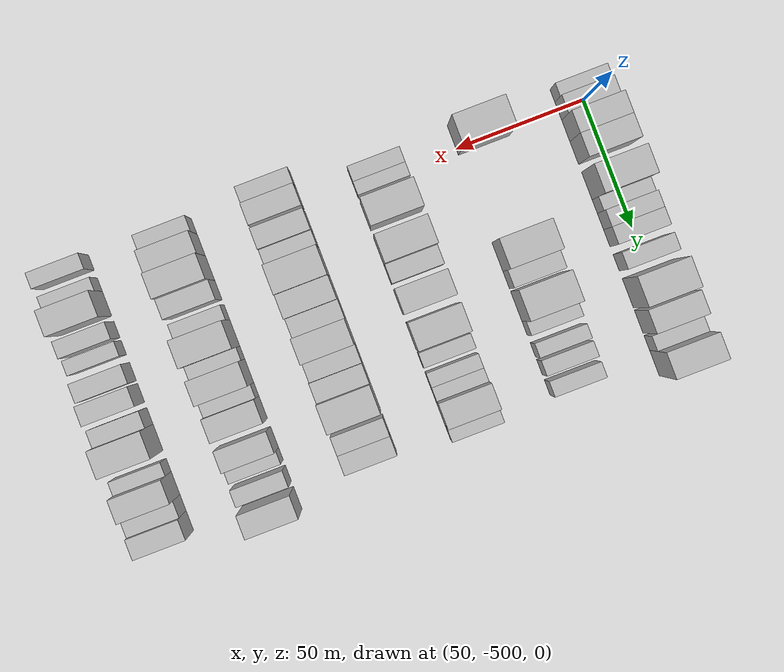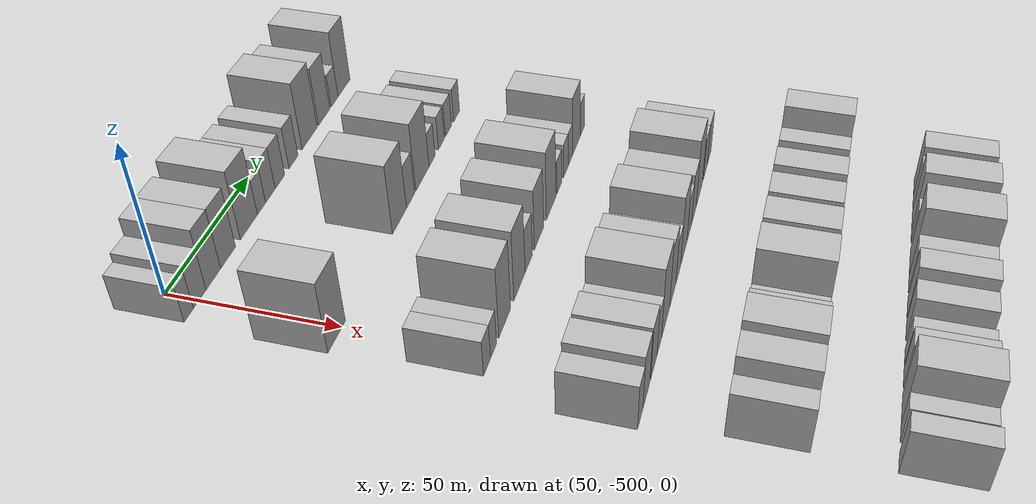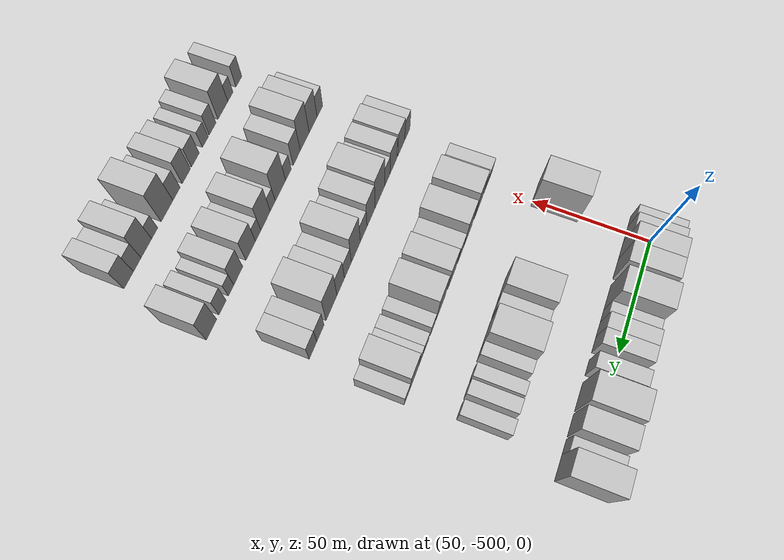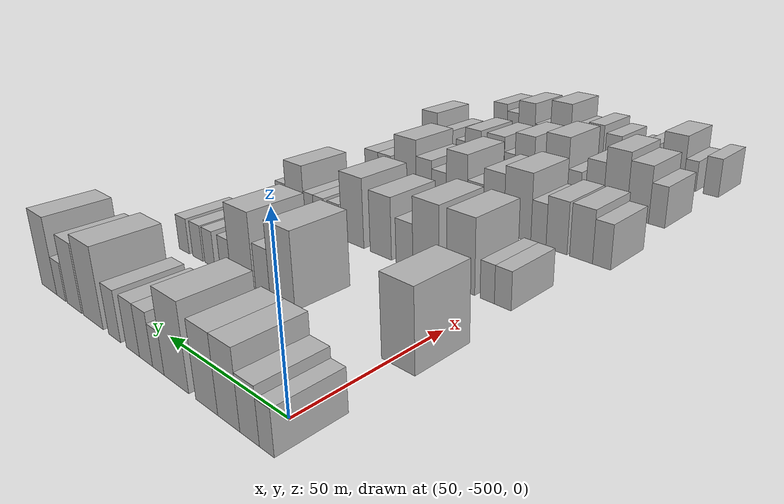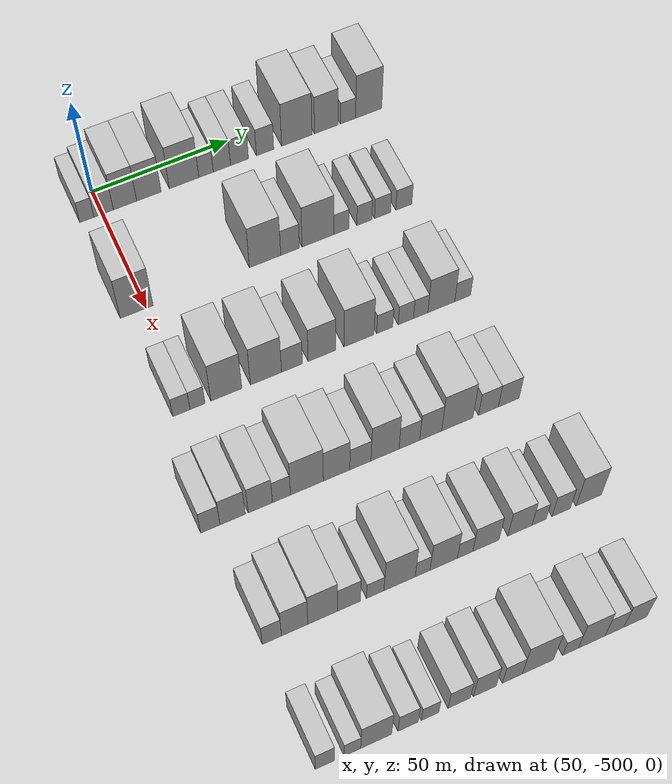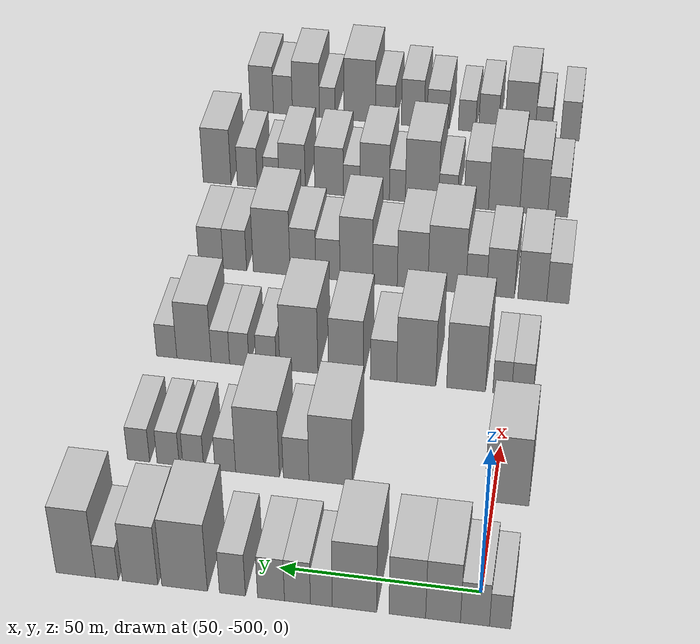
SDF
<sdf version="1.6">
 <world name="default">
  <model name="building_13">
   <static>1</static>
   <pose>50.0000 -505.5607 0 0.000000 0.000000 0.000000</pose>
   <link name="link">
    <pose>0 0 6.00 0 0 0</pose>
    <collision name="collision"><geometry><box><size>20.0000 5.0867 12.0000</size></box></geometry></collision>
    <visual name="visual">
     <cast_shadows>0</cast_shadows>
     <geometry><box><size>20.0000 5.0867 12.0000</size></box></geometry>
     <material>
      <script>
       <uri>model://HANNAS_wall/materials/scripts</uri>
       <uri>model://HANNAS_wall/materials/textures</uri>
       <name>vrc/HANNAS_wall</name>
      </script>
     </material>
    </visual>
   </link>
  </model>
  <model name="building_14">
   <static>1</static>
   <pose>50.0000 -499.5137 0 0.000000 0.000000 0.000000</pose>
   <link name="link">
    <pose>0 0 7.50 0 0 0</pose>
    <collision name="collision"><geometry><box><size>20.0000 7.0072 15.0000</size></box></geometry></collision>
    <visual name="visual">
     <cast_shadows>0</cast_shadows>
     <geometry><box><size>20.0000 7.0072 15.0000</size></box></geometry>
     <material>
      <script>
       <uri>model://HANNAS_wall/materials/scripts</uri>
       <uri>model://HANNAS_wall/materials/textures</uri>
       <name>vrc/HANNAS_wall</name>
      </script>
     </material>
    </visual>
   </link>
  </model>
  <model name="building_15">
   <static>1</static>
   <pose>50.0000 -491.7974 0 0.000000 0.000000 0.000000</pose>
   <link name="link">
    <pose>0 0 10.50 0 0 0</pose>
    <collision name="collision"><geometry><box><size>20.0000 8.4254 21.0000</size></box></geometry></collision>
    <visual name="visual">
     <cast_shadows>0</cast_shadows>
     <geometry><box><size>20.0000 8.4254 21.0000</size></box></geometry>
     <material>
      <script>
       <uri>model://HANNAS_wall/materials/scripts</uri>
       <uri>model://HANNAS_wall/materials/textures</uri>
       <name>vrc/HANNAS_wall</name>
      </script>
     </material>
    </visual>
   </link>
  </model>
  <model name="building_16">
   <static>1</static>
   <pose>50.0000 -483.1295 0 0.000000 0.000000 0.000000</pose>
   <link name="link">
    <pose>0 0 10.50 0 0 0</pose>
    <collision name="collision"><geometry><box><size>20.0000 8.9103 21.0000</size></box></geometry></collision>
    <visual name="visual">
     <cast_shadows>0</cast_shadows>
     <geometry><box><size>20.0000 8.9103 21.0000</size></box></geometry>
     <material>
      <script>
       <uri>model://HANNAS_wall/materials/scripts</uri>
       <uri>model://HANNAS_wall/materials/textures</uri>
       <name>vrc/HANNAS_wall</name>
      </script>
     </material>
    </visual>
   </link>
  </model>
  <model name="building_17">
   <static>1</static>
   <pose>50.0000 -470.2435 0 0.000000 0.000000 0.000000</pose>
   <link name="link">
    <pose>0 0 12.00 0 0 0</pose>
    <collision name="collision"><geometry><box><size>20.0000 10.8619 24.0000</size></box></geometry></collision>
    <visual name="visual">
     <cast_shadows>0</cast_shadows>
     <geometry><box><size>20.0000 10.8619 24.0000</size></box></geometry>
     <material>
      <script>
       <uri>model://HANNAS_wall/materials/scripts</uri>
       <uri>model://HANNAS_wall/materials/textures</uri>
       <name>vrc/HANNAS_wall</name>
      </script>
     </material>
    </visual>
   </link>
  </model>
  <model name="building_18">
   <static>1</static>
   <pose>50.0000 -462.1302 0 0.000000 0.000000 0.000000</pose>
   <link name="link">
    <pose>0 0 6.00 0 0 0</pose>
    <collision name="collision"><geometry><box><size>20.0000 5.3646 12.0000</size></box></geometry></collision>
    <visual name="visual">
     <cast_shadows>0</cast_shadows>
     <geometry><box><size>20.0000 5.3646 12.0000</size></box></geometry>
     <material>
      <script>
       <uri>model://HANNAS_wall/materials/scripts</uri>
       <uri>model://HANNAS_wall/materials/textures</uri>
       <name>vrc/HANNAS_wall</name>
      </script>
     </material>
    </visual>
   </link>
  </model>
  <model name="building_19">
   <static>1</static>
   <pose>50.0000 -456.2409 0 0.000000 0.000000 0.000000</pose>
   <link name="link">
    <pose>0 0 7.50 0 0 0</pose>
    <collision name="collision"><geometry><box><size>20.0000 6.4140 15.0000</size></box></geometry></collision>
    <visual name="visual">
     <cast_shadows>0</cast_shadows>
     <geometry><box><size>20.0000 6.4140 15.0000</size></box></geometry>
     <material>
      <script>
       <uri>model://HANNAS_wall/materials/scripts</uri>
       <uri>model://HANNAS_wall/materials/textures</uri>
       <name>vrc/HANNAS_wall</name>
      </script>
     </material>
    </visual>
   </link>
  </model>
  <model name="building_20">
   <static>1</static>
   <pose>50.0000 -449.6966 0 0.000000 0.000000 0.000000</pose>
   <link name="link">
    <pose>0 0 7.50 0 0 0</pose>
    <collision name="collision"><geometry><box><size>20.0000 6.6747 15.0000</size></box></geometry></collision>
    <visual name="visual">
     <cast_shadows>0</cast_shadows>
     <geometry><box><size>20.0000 6.6747 15.0000</size></box></geometry>
     <material>
      <script>
       <uri>model://HANNAS_wall/materials/scripts</uri>
       <uri>model://HANNAS_wall/materials/textures</uri>
       <name>vrc/HANNAS_wall</name>
      </script>
     </material>
    </visual>
   </link>
  </model>
  <model name="building_21">
   <static>1</static>
   <pose>50.0000 -440.1250 0 0.000000 0.000000 0.000000</pose>
   <link name="link">
    <pose>0 0 7.50 0 0 0</pose>
    <collision name="collision"><geometry><box><size>20.0000 6.4684 15.0000</size></box></geometry></collision>
    <visual name="visual">
     <cast_shadows>0</cast_shadows>
     <geometry><box><size>20.0000 6.4684 15.0000</size></box></geometry>
     <material>
      <script>
       <uri>model://HANNAS_wall/materials/scripts</uri>
       <uri>model://HANNAS_wall/materials/textures</uri>
       <name>vrc/HANNAS_wall</name>
      </script>
     </material>
    </visual>
   </link>
  </model>
  <model name="building_22">
   <static>1</static>
   <pose>50.0000 -428.1693 0 0.000000 0.000000 0.000000</pose>
   <link name="link">
    <pose>0 0 12.00 0 0 0</pose>
    <collision name="collision"><geometry><box><size>20.0000 11.4430 24.0000</size></box></geometry></collision>
    <visual name="visual">
     <cast_shadows>0</cast_shadows>
     <geometry><box><size>20.0000 11.4430 24.0000</size></box></geometry>
     <material>
      <script>
       <uri>model://HANNAS_wall/materials/scripts</uri>
       <uri>model://HANNAS_wall/materials/textures</uri>
       <name>vrc/HANNAS_wall</name>
      </script>
     </material>
    </visual>
   </link>
  </model>
  <model name="building_23">
   <static>1</static>
   <pose>50.0000 -416.9795 0 0.000000 0.000000 0.000000</pose>
   <link name="link">
    <pose>0 0 10.50 0 0 0</pose>
    <collision name="collision"><geometry><box><size>20.0000 8.9366 21.0000</size></box></geometry></collision>
    <visual name="visual">
     <cast_shadows>0</cast_shadows>
     <geometry><box><size>20.0000 8.9366 21.0000</size></box></geometry>
     <material>
      <script>
       <uri>model://HANNAS_wall/materials/scripts</uri>
       <uri>model://HANNAS_wall/materials/textures</uri>
       <name>vrc/HANNAS_wall</name>
      </script>
     </material>
    </visual>
   </link>
  </model>
  <model name="building_24">
   <static>1</static>
   <pose>50.0000 -408.6241 0 0.000000 0.000000 0.000000</pose>
   <link name="link">
    <pose>0 0 6.00 0 0 0</pose>
    <collision name="collision"><geometry><box><size>20.0000 5.7742 12.0000</size></box></geometry></collision>
    <visual name="visual">
     <cast_shadows>0</cast_shadows>
     <geometry><box><size>20.0000 5.7742 12.0000</size></box></geometry>
     <material>
      <script>
       <uri>model://HANNAS_wall/materials/scripts</uri>
       <uri>model://HANNAS_wall/materials/textures</uri>
       <name>vrc/HANNAS_wall</name>
      </script>
     </material>
    </visual>
   </link>
  </model>
  <model name="building_25">
   <static>1</static>
   <pose>50.0000 -400.7155 0 0.000000 0.000000 0.000000</pose>
   <link name="link">
    <pose>0 0 12.00 0 0 0</pose>
    <collision name="collision"><geometry><box><size>20.0000 10.0430 24.0000</size></box></geometry></collision>
    <visual name="visual">
     <cast_shadows>0</cast_shadows>
     <geometry><box><size>20.0000 10.0430 24.0000</size></box></geometry>
     <material>
      <script>
       <uri>model://HANNAS_wall/materials/scripts</uri>
       <uri>model://HANNAS_wall/materials/textures</uri>
       <name>vrc/HANNAS_wall</name>
      </script>
     </material>
    </visual>
   </link>
  </model>
  <model name="building_154">
   <static>1</static>
   <pose>90.0000 -503.3720 0 0.000000 0.000000 0.000000</pose>
   <link name="link">
    <pose>0 0 12.00 0 0 0</pose>
    <collision name="collision"><geometry><box><size>20.0000 11.5220 24.0000</size></box></geometry></collision>
    <visual name="visual">
     <cast_shadows>0</cast_shadows>
     <geometry><box><size>20.0000 11.5220 24.0000</size></box></geometry>
     <material>
      <script>
       <uri>model://HANNAS_wall/materials/scripts</uri>
       <uri>model://HANNAS_wall/materials/textures</uri>
       <name>vrc/HANNAS_wall</name>
      </script>
     </material>
    </visual>
   </link>
  </model>
  <model name="building_155">
   <static>1</static>
   <pose>90.0000 -457.6082 0 0.000000 0.000000 0.000000</pose>
   <link name="link">
    <pose>0 0 12.00 0 0 0</pose>
    <collision name="collision"><geometry><box><size>20.0000 11.3352 24.0000</size></box></geometry></collision>
    <visual name="visual">
     <cast_shadows>0</cast_shadows>
     <geometry><box><size>20.0000 11.3352 24.0000</size></box></geometry>
     <material>
      <script>
       <uri>model://HANNAS_wall/materials/scripts</uri>
       <uri>model://HANNAS_wall/materials/textures</uri>
       <name>vrc/HANNAS_wall</name>
      </script>
     </material>
    </visual>
   </link>
  </model>
  <model name="building_156">
   <static>1</static>
   <pose>90.0000 -448.5424 0 0.000000 0.000000 0.000000</pose>
   <link name="link">
    <pose>0 0 7.50 0 0 0</pose>
    <collision name="collision"><geometry><box><size>20.0000 6.7965 15.0000</size></box></geometry></collision>
    <visual name="visual">
     <cast_shadows>0</cast_shadows>
     <geometry><box><size>20.0000 6.7965 15.0000</size></box></geometry>
     <material>
      <script>
       <uri>model://HANNAS_wall/materials/scripts</uri>
       <uri>model://HANNAS_wall/materials/textures</uri>
       <name>vrc/HANNAS_wall</name>
      </script>
     </material>
    </visual>
   </link>
  </model>
  <model name="building_157">
   <static>1</static>
   <pose>90.0000 -438.3200 0 0.000000 0.000000 0.000000</pose>
   <link name="link">
    <pose>0 0 12.00 0 0 0</pose>
    <collision name="collision"><geometry><box><size>20.0000 11.6481 24.0000</size></box></geometry></collision>
    <visual name="visual">
     <cast_shadows>0</cast_shadows>
     <geometry><box><size>20.0000 11.6481 24.0000</size></box></geometry>
     <material>
      <script>
       <uri>model://HANNAS_wall/materials/scripts</uri>
       <uri>model://HANNAS_wall/materials/textures</uri>
       <name>vrc/HANNAS_wall</name>
      </script>
     </material>
    </visual>
   </link>
  </model>
  <model name="building_158">
   <static>1</static>
   <pose>90.0000 -429.7344 0 0.000000 0.000000 0.000000</pose>
   <link name="link">
    <pose>0 0 6.00 0 0 0</pose>
    <collision name="collision"><geometry><box><size>20.0000 5.5231 12.0000</size></box></geometry></collision>
    <visual name="visual">
     <cast_shadows>0</cast_shadows>
     <geometry><box><size>20.0000 5.5231 12.0000</size></box></geometry>
     <material>
      <script>
       <uri>model://HANNAS_wall/materials/scripts</uri>
       <uri>model://HANNAS_wall/materials/textures</uri>
       <name>vrc/HANNAS_wall</name>
      </script>
     </material>
    </visual>
   </link>
  </model>
  <model name="building_159">
   <static>1</static>
   <pose>90.0000 -421.1964 0 0.000000 0.000000 0.000000</pose>
   <link name="link">
    <pose>0 0 6.00 0 0 0</pose>
    <collision name="collision"><geometry><box><size>20.0000 5.5530 12.0000</size></box></geometry></collision>
    <visual name="visual">
     <cast_shadows>0</cast_shadows>
     <geometry><box><size>20.0000 5.5530 12.0000</size></box></geometry>
     <material>
      <script>
       <uri>model://HANNAS_wall/materials/scripts</uri>
       <uri>model://HANNAS_wall/materials/textures</uri>
       <name>vrc/HANNAS_wall</name>
      </script>
     </material>
    </visual>
   </link>
  </model>
  <model name="building_160">
   <static>1</static>
   <pose>90.0000 -414.4404 0 0.000000 0.000000 0.000000</pose>
   <link name="link">
    <pose>0 0 6.00 0 0 0</pose>
    <collision name="collision"><geometry><box><size>20.0000 5.9591 12.0000</size></box></geometry></collision>
    <visual name="visual">
     <cast_shadows>0</cast_shadows>
     <geometry><box><size>20.0000 5.9591 12.0000</size></box></geometry>
     <material>
      <script>
       <uri>model://HANNAS_wall/materials/scripts</uri>
       <uri>model://HANNAS_wall/materials/textures</uri>
       <name>vrc/HANNAS_wall</name>
      </script>
     </material>
    </visual>
   </link>
  </model>
  <model name="building_161">
   <static>1</static>
   <pose>90.0000 -406.4731 0 0.000000 0.000000 0.000000</pose>
   <link name="link">
    <pose>0 0 6.00 0 0 0</pose>
    <collision name="collision"><geometry><box><size>20.0000 5.9755 12.0000</size></box></geometry></collision>
    <visual name="visual">
     <cast_shadows>0</cast_shadows>
     <geometry><box><size>20.0000 5.9755 12.0000</size></box></geometry>
     <material>
      <script>
       <uri>model://HANNAS_wall/materials/scripts</uri>
       <uri>model://HANNAS_wall/materials/textures</uri>
       <name>vrc/HANNAS_wall</name>
      </script>
     </material>
    </visual>
   </link>
  </model>
  <model name="building_288">
   <static>1</static>
   <pose>130.0000 -503.9950 0 0.000000 0.000000 0.000000</pose>
   <link name="link">
    <pose>0 0 6.00 0 0 0</pose>
    <collision name="collision"><geometry><box><size>20.0000 5.8829 12.0000</size></box></geometry></collision>
    <visual name="visual">
     <cast_shadows>0</cast_shadows>
     <geometry><box><size>20.0000 5.8829 12.0000</size></box></geometry>
     <material>
      <script>
       <uri>model://HANNAS_wall/materials/scripts</uri>
       <uri>model://HANNAS_wall/materials/textures</uri>
       <name>vrc/HANNAS_wall</name>
      </script>
     </material>
    </visual>
   </link>
  </model>
  <model name="building_289">
   <static>1</static>
   <pose>130.0000 -498.4662 0 0.000000 0.000000 0.000000</pose>
   <link name="link">
    <pose>0 0 6.00 0 0 0</pose>
    <collision name="collision"><geometry><box><size>20.0000 5.1748 12.0000</size></box></geometry></collision>
    <visual name="visual">
     <cast_shadows>0</cast_shadows>
     <geometry><box><size>20.0000 5.1748 12.0000</size></box></geometry>
     <material>
      <script>
       <uri>model://HANNAS_wall/materials/scripts</uri>
       <uri>model://HANNAS_wall/materials/textures</uri>
       <name>vrc/HANNAS_wall</name>
      </script>
     </material>
    </visual>
   </link>
  </model>
  <model name="building_290">
   <static>1</static>
   <pose>130.0000 -488.5231 0 0.000000 0.000000 0.000000</pose>
   <link name="link">
    <pose>0 0 12.00 0 0 0</pose>
    <collision name="collision"><geometry><box><size>20.0000 10.7113 24.0000</size></box></geometry></collision>
    <visual name="visual">
     <cast_shadows>0</cast_shadows>
     <geometry><box><size>20.0000 10.7113 24.0000</size></box></geometry>
     <material>
      <script>
       <uri>model://HANNAS_wall/materials/scripts</uri>
       <uri>model://HANNAS_wall/materials/textures</uri>
       <name>vrc/HANNAS_wall</name>
      </script>
     </material>
    </visual>
   </link>
  </model>
  <model name="building_291">
   <static>1</static>
   <pose>130.0000 -474.7561 0 0.000000 0.000000 0.000000</pose>
   <link name="link">
    <pose>0 0 12.00 0 0 0</pose>
    <collision name="collision"><geometry><box><size>20.0000 10.8227 24.0000</size></box></geometry></collision>
    <visual name="visual">
     <cast_shadows>0</cast_shadows>
     <geometry><box><size>20.0000 10.8227 24.0000</size></box></geometry>
     <material>
      <script>
       <uri>model://HANNAS_wall/materials/scripts</uri>
       <uri>model://HANNAS_wall/materials/textures</uri>
       <name>vrc/HANNAS_wall</name>
      </script>
     </material>
    </visual>
   </link>
  </model>
  <model name="building_292">
   <static>1</static>
   <pose>130.0000 -465.6799 0 0.000000 0.000000 0.000000</pose>
   <link name="link">
    <pose>0 0 7.50 0 0 0</pose>
    <collision name="collision"><geometry><box><size>20.0000 7.3295 15.0000</size></box></geometry></collision>
    <visual name="visual">
     <cast_shadows>0</cast_shadows>
     <geometry><box><size>20.0000 7.3295 15.0000</size></box></geometry>
     <material>
      <script>
       <uri>model://HANNAS_wall/materials/scripts</uri>
       <uri>model://HANNAS_wall/materials/textures</uri>
       <name>vrc/HANNAS_wall</name>
      </script>
     </material>
    </visual>
   </link>
  </model>
  <model name="building_293">
   <static>1</static>
   <pose>130.0000 -455.1650 0 0.000000 0.000000 0.000000</pose>
   <link name="link">
    <pose>0 0 10.50 0 0 0</pose>
    <collision name="collision"><geometry><box><size>20.0000 9.7003 21.0000</size></box></geometry></collision>
    <visual name="visual">
     <cast_shadows>0</cast_shadows>
     <geometry><box><size>20.0000 9.7003 21.0000</size></box></geometry>
     <material>
      <script>
       <uri>model://HANNAS_wall/materials/scripts</uri>
       <uri>model://HANNAS_wall/materials/textures</uri>
       <name>vrc/HANNAS_wall</name>
      </script>
     </material>
    </visual>
   </link>
  </model>
  <model name="building_294">
   <static>1</static>
   <pose>130.0000 -441.9603 0 0.000000 0.000000 0.000000</pose>
   <link name="link">
    <pose>0 0 12.00 0 0 0</pose>
    <collision name="collision"><geometry><box><size>20.0000 10.7091 24.0000</size></box></geometry></collision>
    <visual name="visual">
     <cast_shadows>0</cast_shadows>
     <geometry><box><size>20.0000 10.7091 24.0000</size></box></geometry>
     <material>
      <script>
       <uri>model://HANNAS_wall/materials/scripts</uri>
       <uri>model://HANNAS_wall/materials/textures</uri>
       <name>vrc/HANNAS_wall</name>
      </script>
     </material>
    </visual>
   </link>
  </model>
  <model name="building_295">
   <static>1</static>
   <pose>130.0000 -432.7338 0 0.000000 0.000000 0.000000</pose>
   <link name="link">
    <pose>0 0 6.00 0 0 0</pose>
    <collision name="collision"><geometry><box><size>20.0000 5.7440 12.0000</size></box></geometry></collision>
    <visual name="visual">
     <cast_shadows>0</cast_shadows>
     <geometry><box><size>20.0000 5.7440 12.0000</size></box></geometry>
     <material>
      <script>
       <uri>model://HANNAS_wall/materials/scripts</uri>
       <uri>model://HANNAS_wall/materials/textures</uri>
       <name>vrc/HANNAS_wall</name>
      </script>
     </material>
    </visual>
   </link>
  </model>
  <model name="building_296">
   <static>1</static>
   <pose>130.0000 -425.1068 0 0.000000 0.000000 0.000000</pose>
   <link name="link">
    <pose>0 0 6.00 0 0 0</pose>
    <collision name="collision"><geometry><box><size>20.0000 5.5101 12.0000</size></box></geometry></collision>
    <visual name="visual">
     <cast_shadows>0</cast_shadows>
     <geometry><box><size>20.0000 5.5101 12.0000</size></box></geometry>
     <material>
      <script>
       <uri>model://HANNAS_wall/materials/scripts</uri>
       <uri>model://HANNAS_wall/materials/textures</uri>
       <name>vrc/HANNAS_wall</name>
      </script>
     </material>
    </visual>
   </link>
  </model>
  <model name="building_297">
   <static>1</static>
   <pose>130.0000 -419.7398 0 0.000000 0.000000 0.000000</pose>
   <link name="link">
    <pose>0 0 6.00 0 0 0</pose>
    <collision name="collision"><geometry><box><size>20.0000 5.2239 12.0000</size></box></geometry></collision>
    <visual name="visual">
     <cast_shadows>0</cast_shadows>
     <geometry><box><size>20.0000 5.2239 12.0000</size></box></geometry>
     <material>
      <script>
       <uri>model://HANNAS_wall/materials/scripts</uri>
       <uri>model://HANNAS_wall/materials/textures</uri>
       <name>vrc/HANNAS_wall</name>
      </script>
     </material>
    </visual>
   </link>
  </model>
  <model name="building_298">
   <static>1</static>
   <pose>130.0000 -412.2203 0 0.000000 0.000000 0.000000</pose>
   <link name="link">
    <pose>0 0 10.50 0 0 0</pose>
    <collision name="collision"><geometry><box><size>20.0000 9.8151 21.0000</size></box></geometry></collision>
    <visual name="visual">
     <cast_shadows>0</cast_shadows>
     <geometry><box><size>20.0000 9.8151 21.0000</size></box></geometry>
     <material>
      <script>
       <uri>model://HANNAS_wall/materials/scripts</uri>
       <uri>model://HANNAS_wall/materials/textures</uri>
       <name>vrc/HANNAS_wall</name>
      </script>
     </material>
    </visual>
   </link>
  </model>
  <model name="building_299">
   <static>1</static>
   <pose>130.0000 -404.4144 0 0.000000 0.000000 0.000000</pose>
   <link name="link">
    <pose>0 0 6.00 0 0 0</pose>
    <collision name="collision"><geometry><box><size>20.0000 5.7967 12.0000</size></box></geometry></collision>
    <visual name="visual">
     <cast_shadows>0</cast_shadows>
     <geometry><box><size>20.0000 5.7967 12.0000</size></box></geometry>
     <material>
      <script>
       <uri>model://HANNAS_wall/materials/scripts</uri>
       <uri>model://HANNAS_wall/materials/textures</uri>
       <name>vrc/HANNAS_wall</name>
      </script>
     </material>
    </visual>
   </link>
  </model>
  <model name="building_427">
   <static>1</static>
   <pose>170.0000 -510.8133 0 0.000000 0.000000 0.000000</pose>
   <link name="link">
    <pose>0 0 7.50 0 0 0</pose>
    <collision name="collision"><geometry><box><size>20.0000 6.3993 15.0000</size></box></geometry></collision>
    <visual name="visual">
     <cast_shadows>0</cast_shadows>
     <geometry><box><size>20.0000 6.3993 15.0000</size></box></geometry>
     <material>
      <script>
       <uri>model://HANNAS_wall/materials/scripts</uri>
       <uri>model://HANNAS_wall/materials/textures</uri>
       <name>vrc/HANNAS_wall</name>
      </script>
     </material>
    </visual>
   </link>
  </model>
  <model name="building_428">
   <static>1</static>
   <pose>170.0000 -503.4101 0 0.000000 0.000000 0.000000</pose>
   <link name="link">
    <pose>0 0 9.00 0 0 0</pose>
    <collision name="collision"><geometry><box><size>20.0000 8.4070 18.0000</size></box></geometry></collision>
    <visual name="visual">
     <cast_shadows>0</cast_shadows>
     <geometry><box><size>20.0000 8.4070 18.0000</size></box></geometry>
     <material>
      <script>
       <uri>model://HANNAS_wall/materials/scripts</uri>
       <uri>model://HANNAS_wall/materials/textures</uri>
       <name>vrc/HANNAS_wall</name>
      </script>
     </material>
    </visual>
   </link>
  </model>
  <model name="building_429">
   <static>1</static>
   <pose>170.0000 -494.1656 0 0.000000 0.000000 0.000000</pose>
   <link name="link">
    <pose>0 0 9.00 0 0 0</pose>
    <collision name="collision"><geometry><box><size>20.0000 8.0819 18.0000</size></box></geometry></collision>
    <visual name="visual">
     <cast_shadows>0</cast_shadows>
     <geometry><box><size>20.0000 8.0819 18.0000</size></box></geometry>
     <material>
      <script>
       <uri>model://HANNAS_wall/materials/scripts</uri>
       <uri>model://HANNAS_wall/materials/textures</uri>
       <name>vrc/HANNAS_wall</name>
      </script>
     </material>
    </visual>
   </link>
  </model>
  <model name="building_430">
   <static>1</static>
   <pose>170.0000 -487.0966 0 0.000000 0.000000 0.000000</pose>
   <link name="link">
    <pose>0 0 7.50 0 0 0</pose>
    <collision name="collision"><geometry><box><size>20.0000 6.0560 15.0000</size></box></geometry></collision>
    <visual name="visual">
     <cast_shadows>0</cast_shadows>
     <geometry><box><size>20.0000 6.0560 15.0000</size></box></geometry>
     <material>
      <script>
       <uri>model://HANNAS_wall/materials/scripts</uri>
       <uri>model://HANNAS_wall/materials/textures</uri>
       <name>vrc/HANNAS_wall</name>
      </script>
     </material>
    </visual>
   </link>
  </model>
  <model name="building_431">
   <static>1</static>
   <pose>170.0000 -478.4938 0 0.000000 0.000000 0.000000</pose>
   <link name="link">
    <pose>0 0 12.00 0 0 0</pose>
    <collision name="collision"><geometry><box><size>20.0000 11.1496 24.0000</size></box></geometry></collision>
    <visual name="visual">
     <cast_shadows>0</cast_shadows>
     <geometry><box><size>20.0000 11.1496 24.0000</size></box></geometry>
     <material>
      <script>
       <uri>model://HANNAS_wall/materials/scripts</uri>
       <uri>model://HANNAS_wall/materials/textures</uri>
       <name>vrc/HANNAS_wall</name>
      </script>
     </material>
    </visual>
   </link>
  </model>
  <model name="building_432">
   <static>1</static>
   <pose>170.0000 -468.4057 0 0.000000 0.000000 0.000000</pose>
   <link name="link">
    <pose>0 0 10.50 0 0 0</pose>
    <collision name="collision"><geometry><box><size>20.0000 9.0266 21.0000</size></box></geometry></collision>
    <visual name="visual">
     <cast_shadows>0</cast_shadows>
     <geometry><box><size>20.0000 9.0266 21.0000</size></box></geometry>
     <material>
      <script>
       <uri>model://HANNAS_wall/materials/scripts</uri>
       <uri>model://HANNAS_wall/materials/textures</uri>
       <name>vrc/HANNAS_wall</name>
      </script>
     </material>
    </visual>
   </link>
  </model>
  <model name="building_433">
   <static>1</static>
   <pose>170.0000 -460.2583 0 0.000000 0.000000 0.000000</pose>
   <link name="link">
    <pose>0 0 7.50 0 0 0</pose>
    <collision name="collision"><geometry><box><size>20.0000 7.2682 15.0000</size></box></geometry></collision>
    <visual name="visual">
     <cast_shadows>0</cast_shadows>
     <geometry><box><size>20.0000 7.2682 15.0000</size></box></geometry>
     <material>
      <script>
       <uri>model://HANNAS_wall/materials/scripts</uri>
       <uri>model://HANNAS_wall/materials/textures</uri>
       <name>vrc/HANNAS_wall</name>
      </script>
     </material>
    </visual>
   </link>
  </model>
  <model name="building_434">
   <static>1</static>
   <pose>170.0000 -451.7619 0 0.000000 0.000000 0.000000</pose>
   <link name="link">
    <pose>0 0 12.00 0 0 0</pose>
    <collision name="collision"><geometry><box><size>20.0000 9.7244 24.0000</size></box></geometry></collision>
    <visual name="visual">
     <cast_shadows>0</cast_shadows>
     <geometry><box><size>20.0000 9.7244 24.0000</size></box></geometry>
     <material>
      <script>
       <uri>model://HANNAS_wall/materials/scripts</uri>
       <uri>model://HANNAS_wall/materials/textures</uri>
       <name>vrc/HANNAS_wall</name>
      </script>
     </material>
    </visual>
   </link>
  </model>
  <model name="building_435">
   <static>1</static>
   <pose>170.0000 -443.3039 0 0.000000 0.000000 0.000000</pose>
   <link name="link">
    <pose>0 0 7.50 0 0 0</pose>
    <collision name="collision"><geometry><box><size>20.0000 7.1917 15.0000</size></box></geometry></collision>
    <visual name="visual">
     <cast_shadows>0</cast_shadows>
     <geometry><box><size>20.0000 7.1917 15.0000</size></box></geometry>
     <material>
      <script>
       <uri>model://HANNAS_wall/materials/scripts</uri>
       <uri>model://HANNAS_wall/materials/textures</uri>
       <name>vrc/HANNAS_wall</name>
      </script>
     </material>
    </visual>
   </link>
  </model>
  <model name="building_436">
   <static>1</static>
   <pose>170.0000 -435.8646 0 0.000000 0.000000 0.000000</pose>
   <link name="link">
    <pose>0 0 9.00 0 0 0</pose>
    <collision name="collision"><geometry><box><size>20.0000 7.6870 18.0000</size></box></geometry></collision>
    <visual name="visual">
     <cast_shadows>0</cast_shadows>
     <geometry><box><size>20.0000 7.6870 18.0000</size></box></geometry>
     <material>
      <script>
       <uri>model://HANNAS_wall/materials/scripts</uri>
       <uri>model://HANNAS_wall/materials/textures</uri>
       <name>vrc/HANNAS_wall</name>
      </script>
     </material>
    </visual>
   </link>
  </model>
  <model name="building_437">
   <static>1</static>
   <pose>170.0000 -426.4989 0 0.000000 0.000000 0.000000</pose>
   <link name="link">
    <pose>0 0 12.00 0 0 0</pose>
    <collision name="collision"><geometry><box><size>20.0000 11.0443 24.0000</size></box></geometry></collision>
    <visual name="visual">
     <cast_shadows>0</cast_shadows>
     <geometry><box><size>20.0000 11.0443 24.0000</size></box></geometry>
     <material>
      <script>
       <uri>model://HANNAS_wall/materials/scripts</uri>
       <uri>model://HANNAS_wall/materials/textures</uri>
       <name>vrc/HANNAS_wall</name>
      </script>
     </material>
    </visual>
   </link>
  </model>
  <model name="building_438">
   <static>1</static>
   <pose>170.0000 -415.4494 0 0.000000 0.000000 0.000000</pose>
   <link name="link">
    <pose>0 0 7.50 0 0 0</pose>
    <collision name="collision"><geometry><box><size>20.0000 7.0547 15.0000</size></box></geometry></collision>
    <visual name="visual">
     <cast_shadows>0</cast_shadows>
     <geometry><box><size>20.0000 7.0547 15.0000</size></box></geometry>
     <material>
      <script>
       <uri>model://HANNAS_wall/materials/scripts</uri>
       <uri>model://HANNAS_wall/materials/textures</uri>
       <name>vrc/HANNAS_wall</name>
      </script>
     </material>
    </visual>
   </link>
  </model>
  <model name="building_439">
   <static>1</static>
   <pose>170.0000 -408.2278 0 0.000000 0.000000 0.000000</pose>
   <link name="link">
    <pose>0 0 7.50 0 0 0</pose>
    <collision name="collision"><geometry><box><size>20.0000 7.3884 15.0000</size></box></geometry></collision>
    <visual name="visual">
     <cast_shadows>0</cast_shadows>
     <geometry><box><size>20.0000 7.3884 15.0000</size></box></geometry>
     <material>
      <script>
       <uri>model://HANNAS_wall/materials/scripts</uri>
       <uri>model://HANNAS_wall/materials/textures</uri>
       <name>vrc/HANNAS_wall</name>
      </script>
     </material>
    </visual>
   </link>
  </model>
  <model name="building_553">
   <static>1</static>
   <pose>210.0000 -507.8899 0 0.000000 0.000000 0.000000</pose>
   <link name="link">
    <pose>0 0 7.50 0 0 0</pose>
    <collision name="collision"><geometry><box><size>20.0000 6.1480 15.0000</size></box></geometry></collision>
    <visual name="visual">
     <cast_shadows>0</cast_shadows>
     <geometry><box><size>20.0000 6.1480 15.0000</size></box></geometry>
     <material>
      <script>
       <uri>model://HANNAS_wall/materials/scripts</uri>
       <uri>model://HANNAS_wall/materials/textures</uri>
       <name>vrc/HANNAS_wall</name>
      </script>
     </material>
    </visual>
   </link>
  </model>
  <model name="building_554">
   <static>1</static>
   <pose>210.0000 -500.5266 0 0.000000 0.000000 0.000000</pose>
   <link name="link">
    <pose>0 0 10.50 0 0 0</pose>
    <collision name="collision"><geometry><box><size>20.0000 8.5786 21.0000</size></box></geometry></collision>
    <visual name="visual">
     <cast_shadows>0</cast_shadows>
     <geometry><box><size>20.0000 8.5786 21.0000</size></box></geometry>
     <material>
      <script>
       <uri>model://HANNAS_wall/materials/scripts</uri>
       <uri>model://HANNAS_wall/materials/textures</uri>
       <name>vrc/HANNAS_wall</name>
      </script>
     </material>
    </visual>
   </link>
  </model>
  <model name="building_555">
   <static>1</static>
   <pose>210.0000 -491.4344 0 0.000000 0.000000 0.000000</pose>
   <link name="link">
    <pose>0 0 12.00 0 0 0</pose>
    <collision name="collision"><geometry><box><size>20.0000 9.6058 24.0000</size></box></geometry></collision>
    <visual name="visual">
     <cast_shadows>0</cast_shadows>
     <geometry><box><size>20.0000 9.6058 24.0000</size></box></geometry>
     <material>
      <script>
       <uri>model://HANNAS_wall/materials/scripts</uri>
       <uri>model://HANNAS_wall/materials/textures</uri>
       <name>vrc/HANNAS_wall</name>
      </script>
     </material>
    </visual>
   </link>
  </model>
  <model name="building_556">
   <static>1</static>
   <pose>210.0000 -482.8251 0 0.000000 0.000000 0.000000</pose>
   <link name="link">
    <pose>0 0 9.00 0 0 0</pose>
    <collision name="collision"><geometry><box><size>20.0000 7.6129 18.0000</size></box></geometry></collision>
    <visual name="visual">
     <cast_shadows>0</cast_shadows>
     <geometry><box><size>20.0000 7.6129 18.0000</size></box></geometry>
     <material>
      <script>
       <uri>model://HANNAS_wall/materials/scripts</uri>
       <uri>model://HANNAS_wall/materials/textures</uri>
       <name>vrc/HANNAS_wall</name>
      </script>
     </material>
    </visual>
   </link>
  </model>
  <model name="building_557">
   <static>1</static>
   <pose>210.0000 -474.1264 0 0.000000 0.000000 0.000000</pose>
   <link name="link">
    <pose>0 0 6.00 0 0 0</pose>
    <collision name="collision"><geometry><box><size>20.0000 5.7845 12.0000</size></box></geometry></collision>
    <visual name="visual">
     <cast_shadows>0</cast_shadows>
     <geometry><box><size>20.0000 5.7845 12.0000</size></box></geometry>
     <material>
      <script>
       <uri>model://HANNAS_wall/materials/scripts</uri>
       <uri>model://HANNAS_wall/materials/textures</uri>
       <name>vrc/HANNAS_wall</name>
      </script>
     </material>
    </visual>
   </link>
  </model>
  <model name="building_558">
   <static>1</static>
   <pose>210.0000 -466.0253 0 0.000000 0.000000 0.000000</pose>
   <link name="link">
    <pose>0 0 12.00 0 0 0</pose>
    <collision name="collision"><geometry><box><size>20.0000 10.4176 24.0000</size></box></geometry></collision>
    <visual name="visual">
     <cast_shadows>0</cast_shadows>
     <geometry><box><size>20.0000 10.4176 24.0000</size></box></geometry>
     <material>
      <script>
       <uri>model://HANNAS_wall/materials/scripts</uri>
       <uri>model://HANNAS_wall/materials/textures</uri>
       <name>vrc/HANNAS_wall</name>
      </script>
     </material>
    </visual>
   </link>
  </model>
  <model name="building_559">
   <static>1</static>
   <pose>210.0000 -458.3225 0 0.000000 0.000000 0.000000</pose>
   <link name="link">
    <pose>0 0 6.00 0 0 0</pose>
    <collision name="collision"><geometry><box><size>20.0000 4.9881 12.0000</size></box></geometry></collision>
    <visual name="visual">
     <cast_shadows>0</cast_shadows>
     <geometry><box><size>20.0000 4.9881 12.0000</size></box></geometry>
     <material>
      <script>
       <uri>model://HANNAS_wall/materials/scripts</uri>
       <uri>model://HANNAS_wall/materials/textures</uri>
       <name>vrc/HANNAS_wall</name>
      </script>
     </material>
    </visual>
   </link>
  </model>
  <model name="building_560">
   <static>1</static>
   <pose>210.0000 -451.1974 0 0.000000 0.000000 0.000000</pose>
   <link name="link">
    <pose>0 0 10.50 0 0 0</pose>
    <collision name="collision"><geometry><box><size>20.0000 9.2621 21.0000</size></box></geometry></collision>
    <visual name="visual">
     <cast_shadows>0</cast_shadows>
     <geometry><box><size>20.0000 9.2621 21.0000</size></box></geometry>
     <material>
      <script>
       <uri>model://HANNAS_wall/materials/scripts</uri>
       <uri>model://HANNAS_wall/materials/textures</uri>
       <name>vrc/HANNAS_wall</name>
      </script>
     </material>
    </visual>
   </link>
  </model>
  <model name="building_561">
   <static>1</static>
   <pose>210.0000 -443.9658 0 0.000000 0.000000 0.000000</pose>
   <link name="link">
    <pose>0 0 6.00 0 0 0</pose>
    <collision name="collision"><geometry><box><size>20.0000 5.2012 12.0000</size></box></geometry></collision>
    <visual name="visual">
     <cast_shadows>0</cast_shadows>
     <geometry><box><size>20.0000 5.2012 12.0000</size></box></geometry>
     <material>
      <script>
       <uri>model://HANNAS_wall/materials/scripts</uri>
       <uri>model://HANNAS_wall/materials/textures</uri>
       <name>vrc/HANNAS_wall</name>
      </script>
     </material>
    </visual>
   </link>
  </model>
  <model name="building_562">
   <static>1</static>
   <pose>210.0000 -436.8788 0 0.000000 0.000000 0.000000</pose>
   <link name="link">
    <pose>0 0 9.00 0 0 0</pose>
    <collision name="collision"><geometry><box><size>20.0000 8.9728 18.0000</size></box></geometry></collision>
    <visual name="visual">
     <cast_shadows>0</cast_shadows>
     <geometry><box><size>20.0000 8.9728 18.0000</size></box></geometry>
     <material>
      <script>
       <uri>model://HANNAS_wall/materials/scripts</uri>
       <uri>model://HANNAS_wall/materials/textures</uri>
       <name>vrc/HANNAS_wall</name>
      </script>
     </material>
    </visual>
   </link>
  </model>
  <model name="building_563">
   <static>1</static>
   <pose>210.0000 -425.2382 0 0.000000 0.000000 0.000000</pose>
   <link name="link">
    <pose>0 0 9.00 0 0 0</pose>
    <collision name="collision"><geometry><box><size>20.0000 8.3084 18.0000</size></box></geometry></collision>
    <visual name="visual">
     <cast_shadows>0</cast_shadows>
     <geometry><box><size>20.0000 8.3084 18.0000</size></box></geometry>
     <material>
      <script>
       <uri>model://HANNAS_wall/materials/scripts</uri>
       <uri>model://HANNAS_wall/materials/textures</uri>
       <name>vrc/HANNAS_wall</name>
      </script>
     </material>
    </visual>
   </link>
  </model>
  <model name="building_564">
   <static>1</static>
   <pose>210.0000 -418.6225 0 0.000000 0.000000 0.000000</pose>
   <link name="link">
    <pose>0 0 6.00 0 0 0</pose>
    <collision name="collision"><geometry><box><size>20.0000 4.9229 12.0000</size></box></geometry></collision>
    <visual name="visual">
     <cast_shadows>0</cast_shadows>
     <geometry><box><size>20.0000 4.9229 12.0000</size></box></geometry>
     <material>
      <script>
       <uri>model://HANNAS_wall/materials/scripts</uri>
       <uri>model://HANNAS_wall/materials/textures</uri>
       <name>vrc/HANNAS_wall</name>
      </script>
     </material>
    </visual>
   </link>
  </model>
  <model name="building_565">
   <static>1</static>
   <pose>210.0000 -410.9744 0 0.000000 0.000000 0.000000</pose>
   <link name="link">
    <pose>0 0 7.50 0 0 0</pose>
    <collision name="collision"><geometry><box><size>20.0000 6.3733 15.0000</size></box></geometry></collision>
    <visual name="visual">
     <cast_shadows>0</cast_shadows>
     <geometry><box><size>20.0000 6.3733 15.0000</size></box></geometry>
     <material>
      <script>
       <uri>model://HANNAS_wall/materials/scripts</uri>
       <uri>model://HANNAS_wall/materials/textures</uri>
       <name>vrc/HANNAS_wall</name>
      </script>
     </material>
    </visual>
   </link>
  </model>
  <model name="building_566">
   <static>1</static>
   <pose>210.0000 -401.3374 0 0.000000 0.000000 0.000000</pose>
   <link name="link">
    <pose>0 0 10.50 0 0 0</pose>
    <collision name="collision"><geometry><box><size>20.0000 8.9006 21.0000</size></box></geometry></collision>
    <visual name="visual">
     <cast_shadows>0</cast_shadows>
     <geometry><box><size>20.0000 8.9006 21.0000</size></box></geometry>
     <material>
      <script>
       <uri>model://HANNAS_wall/materials/scripts</uri>
       <uri>model://HANNAS_wall/materials/textures</uri>
       <name>vrc/HANNAS_wall</name>
      </script>
     </material>
    </visual>
   </link>
  </model>
  <model name="building_698">
   <static>1</static>
   <pose>250.0000 -508.9489 0 0.000000 0.000000 0.000000</pose>
   <link name="link">
    <pose>0 0 7.50 0 0 0</pose>
    <collision name="collision"><geometry><box><size>20.0000 6.0416 15.0000</size></box></geometry></collision>
    <visual name="visual">
     <cast_shadows>0</cast_shadows>
     <geometry><box><size>20.0000 6.0416 15.0000</size></box></geometry>
     <material>
      <script>
       <uri>model://HANNAS_wall/materials/scripts</uri>
       <uri>model://HANNAS_wall/materials/textures</uri>
       <name>vrc/HANNAS_wall</name>
      </script>
     </material>
    </visual>
   </link>
  </model>
  <model name="building_699">
   <static>1</static>
   <pose>250.0000 -500.3168 0 0.000000 0.000000 0.000000</pose>
   <link name="link">
    <pose>0 0 6.00 0 0 0</pose>
    <collision name="collision"><geometry><box><size>20.0000 5.2225 12.0000</size></box></geometry></collision>
    <visual name="visual">
     <cast_shadows>0</cast_shadows>
     <geometry><box><size>20.0000 5.2225 12.0000</size></box></geometry>
     <material>
      <script>
       <uri>model://HANNAS_wall/materials/scripts</uri>
       <uri>model://HANNAS_wall/materials/textures</uri>
       <name>vrc/HANNAS_wall</name>
      </script>
     </material>
    </visual>
   </link>
  </model>
  <model name="building_700">
   <static>1</static>
   <pose>250.0000 -492.7923 0 0.000000 0.000000 0.000000</pose>
   <link name="link">
    <pose>0 0 10.50 0 0 0</pose>
    <collision name="collision"><geometry><box><size>20.0000 9.8266 21.0000</size></box></geometry></collision>
    <visual name="visual">
     <cast_shadows>0</cast_shadows>
     <geometry><box><size>20.0000 9.8266 21.0000</size></box></geometry>
     <material>
      <script>
       <uri>model://HANNAS_wall/materials/scripts</uri>
       <uri>model://HANNAS_wall/materials/textures</uri>
       <name>vrc/HANNAS_wall</name>
      </script>
     </material>
    </visual>
   </link>
  </model>
  <model name="building_701">
   <static>1</static>
   <pose>250.0000 -482.6391 0 0.000000 0.000000 0.000000</pose>
   <link name="link">
    <pose>0 0 7.50 0 0 0</pose>
    <collision name="collision"><geometry><box><size>20.0000 6.4798 15.0000</size></box></geometry></collision>
    <visual name="visual">
     <cast_shadows>0</cast_shadows>
     <geometry><box><size>20.0000 6.4798 15.0000</size></box></geometry>
     <material>
      <script>
       <uri>model://HANNAS_wall/materials/scripts</uri>
       <uri>model://HANNAS_wall/materials/textures</uri>
       <name>vrc/HANNAS_wall</name>
      </script>
     </material>
    </visual>
   </link>
  </model>
  <model name="building_702">
   <static>1</static>
   <pose>250.0000 -475.5818 0 0.000000 0.000000 0.000000</pose>
   <link name="link">
    <pose>0 0 6.00 0 0 0</pose>
    <collision name="collision"><geometry><box><size>20.0000 5.6348 12.0000</size></box></geometry></collision>
    <visual name="visual">
     <cast_shadows>0</cast_shadows>
     <geometry><box><size>20.0000 5.6348 12.0000</size></box></geometry>
     <material>
      <script>
       <uri>model://HANNAS_wall/materials/scripts</uri>
       <uri>model://HANNAS_wall/materials/textures</uri>
       <name>vrc/HANNAS_wall</name>
      </script>
     </material>
    </visual>
   </link>
  </model>
  <model name="building_703">
   <static>1</static>
   <pose>250.0000 -466.1447 0 0.000000 0.000000 0.000000</pose>
   <link name="link">
    <pose>0 0 7.50 0 0 0</pose>
    <collision name="collision"><geometry><box><size>20.0000 7.2393 15.0000</size></box></geometry></collision>
    <visual name="visual">
     <cast_shadows>0</cast_shadows>
     <geometry><box><size>20.0000 7.2393 15.0000</size></box></geometry>
     <material>
      <script>
       <uri>model://HANNAS_wall/materials/scripts</uri>
       <uri>model://HANNAS_wall/materials/textures</uri>
       <name>vrc/HANNAS_wall</name>
      </script>
     </material>
    </visual>
   </link>
  </model>
  <model name="building_704">
   <static>1</static>
   <pose>250.0000 -457.7866 0 0.000000 0.000000 0.000000</pose>
   <link name="link">
    <pose>0 0 9.00 0 0 0</pose>
    <collision name="collision"><geometry><box><size>20.0000 7.4769 18.0000</size></box></geometry></collision>
    <visual name="visual">
     <cast_shadows>0</cast_shadows>
     <geometry><box><size>20.0000 7.4769 18.0000</size></box></geometry>
     <material>
      <script>
       <uri>model://HANNAS_wall/materials/scripts</uri>
       <uri>model://HANNAS_wall/materials/textures</uri>
       <name>vrc/HANNAS_wall</name>
      </script>
     </material>
    </visual>
   </link>
  </model>
  <model name="building_705">
   <static>1</static>
   <pose>250.0000 -448.7820 0 0.000000 0.000000 0.000000</pose>
   <link name="link">
    <pose>0 0 7.50 0 0 0</pose>
    <collision name="collision"><geometry><box><size>20.0000 6.5324 15.0000</size></box></geometry></collision>
    <visual name="visual">
     <cast_shadows>0</cast_shadows>
     <geometry><box><size>20.0000 6.5324 15.0000</size></box></geometry>
     <material>
      <script>
       <uri>model://HANNAS_wall/materials/scripts</uri>
       <uri>model://HANNAS_wall/materials/textures</uri>
       <name>vrc/HANNAS_wall</name>
      </script>
     </material>
    </visual>
   </link>
  </model>
  <model name="building_706">
   <static>1</static>
   <pose>250.0000 -440.3181 0 0.000000 0.000000 0.000000</pose>
   <link name="link">
    <pose>0 0 12.00 0 0 0</pose>
    <collision name="collision"><geometry><box><size>20.0000 10.3954 24.0000</size></box></geometry></collision>
    <visual name="visual">
     <cast_shadows>0</cast_shadows>
     <geometry><box><size>20.0000 10.3954 24.0000</size></box></geometry>
     <material>
      <script>
       <uri>model://HANNAS_wall/materials/scripts</uri>
       <uri>model://HANNAS_wall/materials/textures</uri>
       <name>vrc/HANNAS_wall</name>
      </script>
     </material>
    </visual>
   </link>
  </model>
  <model name="building_707">
   <static>1</static>
   <pose>250.0000 -429.5089 0 0.000000 0.000000 0.000000</pose>
   <link name="link">
    <pose>0 0 6.00 0 0 0</pose>
    <collision name="collision"><geometry><box><size>20.0000 5.2229 12.0000</size></box></geometry></collision>
    <visual name="visual">
     <cast_shadows>0</cast_shadows>
     <geometry><box><size>20.0000 5.2229 12.0000</size></box></geometry>
     <material>
      <script>
       <uri>model://HANNAS_wall/materials/scripts</uri>
       <uri>model://HANNAS_wall/materials/textures</uri>
       <name>vrc/HANNAS_wall</name>
      </script>
     </material>
    </visual>
   </link>
  </model>
  <model name="building_708">
   <static>1</static>
   <pose>250.0000 -422.3922 0 0.000000 0.000000 0.000000</pose>
   <link name="link">
    <pose>0 0 10.50 0 0 0</pose>
    <collision name="collision"><geometry><box><size>20.0000 9.0104 21.0000</size></box></geometry></collision>
    <visual name="visual">
     <cast_shadows>0</cast_shadows>
     <geometry><box><size>20.0000 9.0104 21.0000</size></box></geometry>
     <material>
      <script>
       <uri>model://HANNAS_wall/materials/scripts</uri>
       <uri>model://HANNAS_wall/materials/textures</uri>
       <name>vrc/HANNAS_wall</name>
      </script>
     </material>
    </visual>
   </link>
  </model>
  <model name="building_709">
   <static>1</static>
   <pose>250.0000 -414.7018 0 0.000000 0.000000 0.000000</pose>
   <link name="link">
    <pose>0 0 7.50 0 0 0</pose>
    <collision name="collision"><geometry><box><size>20.0000 6.3703 15.0000</size></box></geometry></collision>
    <visual name="visual">
     <cast_shadows>0</cast_shadows>
     <geometry><box><size>20.0000 6.3703 15.0000</size></box></geometry>
     <material>
      <script>
       <uri>model://HANNAS_wall/materials/scripts</uri>
       <uri>model://HANNAS_wall/materials/textures</uri>
       <name>vrc/HANNAS_wall</name>
      </script>
     </material>
    </visual>
   </link>
  </model>
  <model name="building_710">
   <static>1</static>
   <pose>250.0000 -407.6246 0 0.000000 0.000000 0.000000</pose>
   <link name="link">
    <pose>0 0 9.00 0 0 0</pose>
    <collision name="collision"><geometry><box><size>20.0000 7.7841 18.0000</size></box></geometry></collision>
    <visual name="visual">
     <cast_shadows>0</cast_shadows>
     <geometry><box><size>20.0000 7.7841 18.0000</size></box></geometry>
     <material>
      <script>
       <uri>model://HANNAS_wall/materials/scripts</uri>
       <uri>model://HANNAS_wall/materials/textures</uri>
       <name>vrc/HANNAS_wall</name>
      </script>
     </material>
    </visual>
   </link>
  </model>
 </world>
</sdf>
